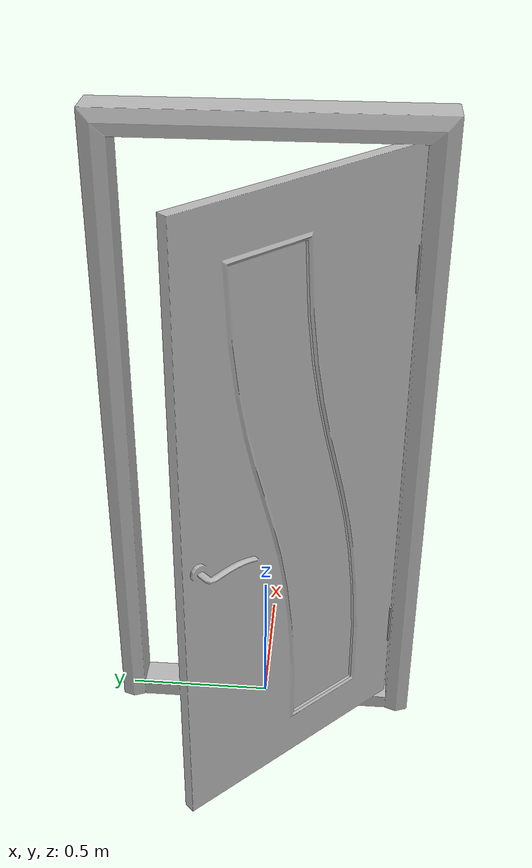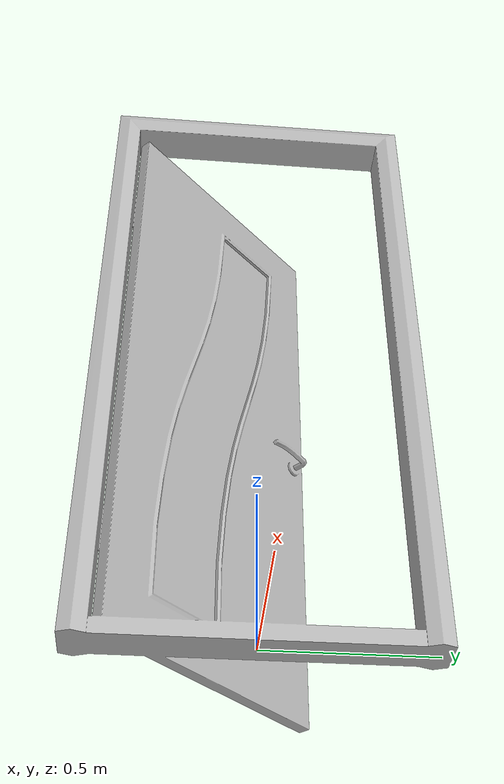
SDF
<?xml version='1.0'?>
<sdf version='1.4'>
  <model name='769'>
    <pose>0 0 0 0 0 0</pose>
    <static>true</static>
    <link name='link'>
      <collision name='collision'>
        <pose>0 0 0 0 0 0</pose>
        <geometry>
          <box>
            <size>0.739999 1.06003 2</size>
          </box>
        </geometry>
      </collision>
      <visual name='visual'>
        <pose>0 0 0 0 0 0</pose>
        <geometry>
          <mesh><uri>model://769/769.dae</uri></mesh>
        </geometry>
      </visual>
    </link>
  </model>
</sdf>
